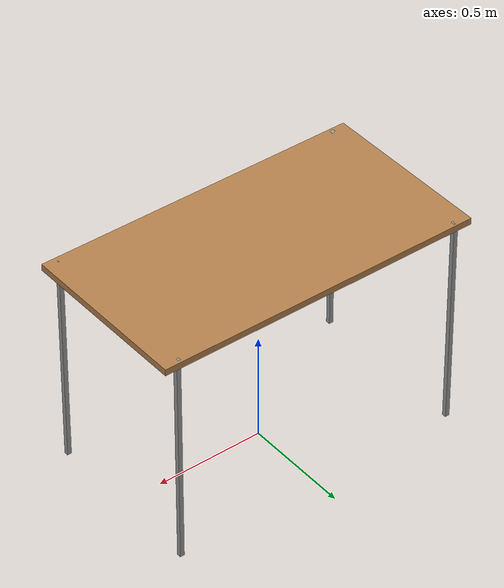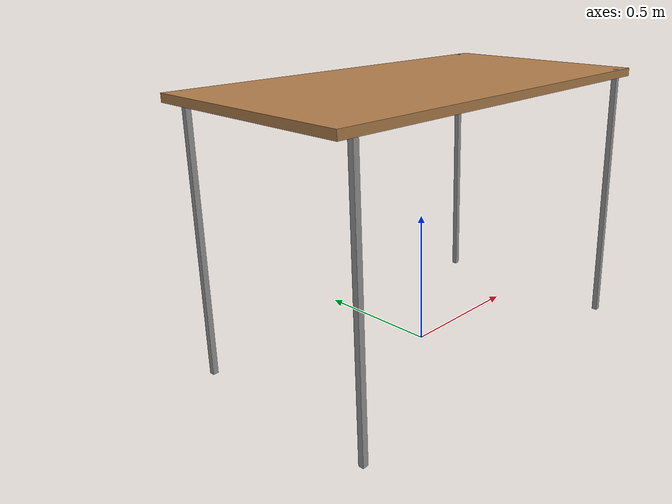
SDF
<?xml version="1.0" ?>
<sdf version="1.5">
  <model name="desk">
      <allow_auto_disable>0</allow_auto_disable>
    <static>false</static>
    <link name="link">
      <collision name="surface">
        <pose>0 0 0.985 0 0 0</pose>
        <geometry>
          <box>
            <size>1.5 0.8 0.03</size>
          </box>
        </geometry>
        <surface>
          <friction>
            <ode>
              <mu>0.6</mu>
              <mu2>0.6</mu2>
            </ode>
          </friction>
        </surface>
      </collision>
      <visual name="visual1">
        <pose>0 0 0.985 0 0 0</pose>
        <geometry>
          <box>
            <size>1.5 0.8 0.03</size>
          </box>
        </geometry>
        <material>
          <script>
            <uri>file://media/materials/scripts/gazebo.material</uri>
            <name>Gazebo/Wood</name>
          </script>
        </material>
      </visual>
      <collision name="front_left_leg">
        <pose>0.68 0.38 0.5 0 0 0</pose>
        <geometry>
          <box>
            <size>0.02 0.02 1.0</size>
          </box>
        </geometry>
      </collision>
      <visual name="front_left_leg">
        <pose>0.68 0.38 0.5 0 0 0</pose>
        <geometry>
          <box>
            <size>0.02 0.02 1.0</size>
          </box>
        </geometry>
        <material>
          <script>
            <uri>file://media/materials/scripts/gazebo.material</uri>
            <name>Gazebo/Grey</name>
          </script>
        </material>
      </visual>
      <collision name="front_right_leg">
        <pose>0.68 -0.38 0.5 0 0 0</pose>
        <geometry>
          <box>
            <size>0.02 0.02 1.0</size>
          </box>
        </geometry>
      </collision>
      <visual name="front_right_leg">
        <pose>0.68 -0.38 0.5 0 0 0</pose>
        <geometry>
          <box>
            <size>0.02 0.02 1.0</size>
          </box>
        </geometry>
        <material>
          <script>
            <uri>file://media/materials/scripts/gazebo.material</uri>
            <name>Gazebo/Grey</name>
          </script>
        </material>
      </visual>
      <collision name="back_right_leg">
        <pose>-0.68 -0.38 0.5 0 0 0</pose>
        <geometry>
          <box>
            <size>0.02 0.02 1.0</size>
          </box>
        </geometry>
      </collision>
      <visual name="back_right_leg">
        <pose>-0.68 -0.38 0.5 0 0 0</pose>
        <geometry>
          <box>
            <size>0.02 0.02 1.0</size>
          </box>
        </geometry>
        <material>
          <script>
            <uri>file://media/materials/scripts/gazebo.material</uri>
            <name>Gazebo/Grey</name>
          </script>
        </material>
      </visual>
      <collision name="back_left_leg">
        <pose>-0.68 0.38 0.5 0 0 0</pose>
        <geometry>
          <box>
            <size>0.02 0.02 1.0</size>
          </box>
        </geometry>
      </collision>
      <visual name="back_left_leg">
        <pose>-0.68 0.38 0.5 0 0 0</pose>
        <geometry>
          <box>
            <size>0.02 0.02 1.0</size>
          </box>
        </geometry>
        <material>
          <script>
            <uri>file://media/materials/scripts/gazebo.material</uri>
            <name>Gazebo/Grey</name>
          </script>
        </material>
      </visual>
    </link>
  </model>
</sdf>
